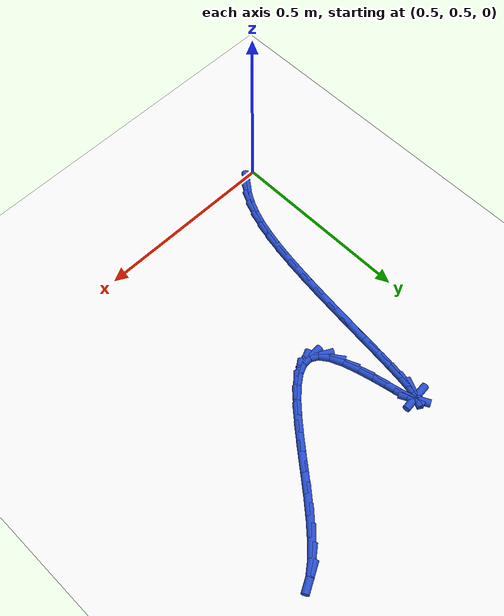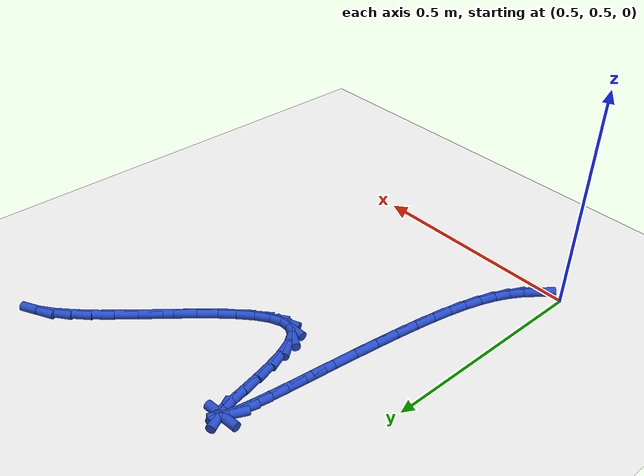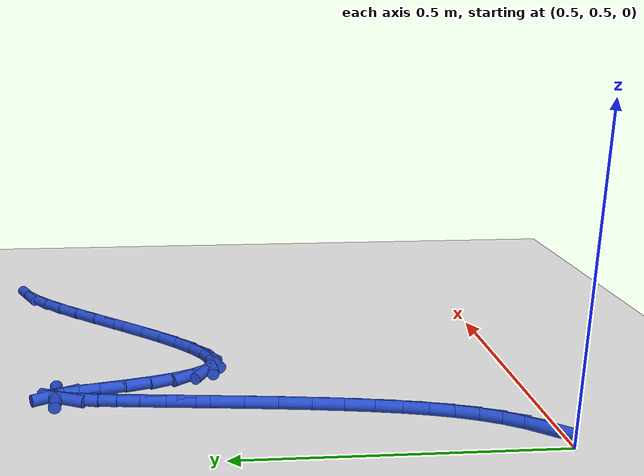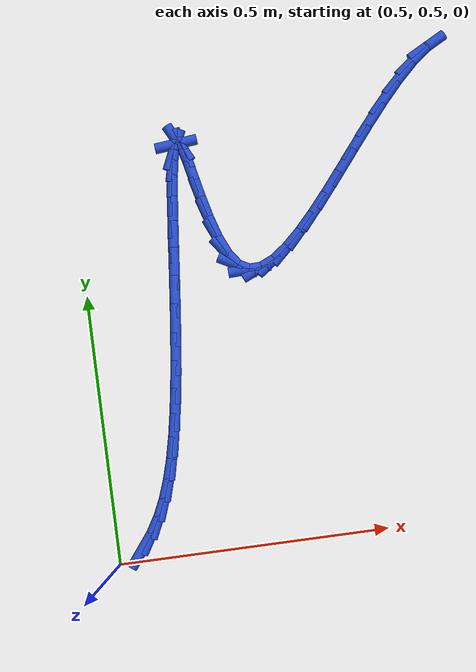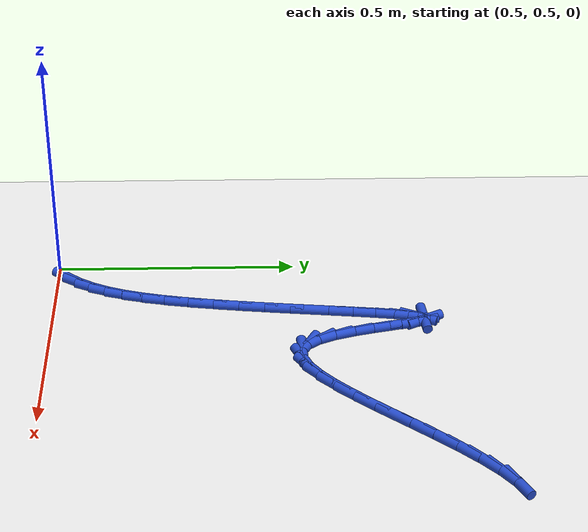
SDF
<sdf version="1.6">
 <world name="default">
  <model name="ground_plane">
   <static>1</static>
   <link name="link">
    <collision name="collision">
     <geometry><plane><normal>0 0 1</normal><size>100 100</size></plane></geometry>
     <surface><friction><ode><mu>100</mu><mu2>50</mu2></ode></friction></surface>
    </collision>
    <visual name="visual">
     <cast_shadows>0</cast_shadows>
     <geometry><plane><normal>0 0 1</normal><size>100 100</size></plane></geometry>
     <material>
      <script><uri>file://media/materials/scripts/gazebo.material</uri><name>Gazebo/WhiteGlow</name></script>
     </material>
    </visual>
   </link>
  </model>
  <model name="line">
   <link name="link_24">
    <pose>0.5455296327823708 0.5236204472520936 0.01 0 1.57 0.9145304912818619</pose>
    <collision name="collision">
     <geometry><cylinder><radius>0.01</radius><length>0.08</length></cylinder></geometry>
    </collision>
    <visual name="visual">
     <material>
      <script><name>Gazebo/Blue</name><uri>file://media/materials/scripts/gazebo.material</uri></script>
     </material>
     <geometry><cylinder><radius>0.01</radius><length>0.08</length></cylinder></geometry>
    </visual>
   </link>
   <link name="link_25">
    <pose>0.5647724157699903 0.5486065712041363 0.01 0 1.57 1.0345388438335907</pose>
    <collision name="collision">
     <geometry><cylinder><radius>0.01</radius><length>0.08</length></cylinder></geometry>
    </collision>
    <visual name="visual">
     <material>
      <script><name>Gazebo/Blue</name><uri>file://media/materials/scripts/gazebo.material</uri></script>
     </material>
     <geometry><cylinder><radius>0.01</radius><length>0.08</length></cylinder></geometry>
    </visual>
   </link>
   <link name="link_26">
    <pose>0.5814075393596708 0.5765951627173169 0.01 0 1.57 1.1398627381804094</pose>
    <collision name="collision">
     <geometry><cylinder><radius>0.01</radius><length>0.08</length></cylinder></geometry>
    </collision>
    <visual name="visual">
     <material>
      <script><name>Gazebo/Blue</name><uri>file://media/materials/scripts/gazebo.material</uri></script>
     </material>
     <geometry><cylinder><radius>0.01</radius><length>0.08</length></cylinder></geometry>
    </visual>
   </link>
   <link name="link_27">
    <pose>0.595756232202608 0.607804835888742 0.01 0 1.57 1.227549307937443</pose>
    <collision name="collision">
     <geometry><cylinder><radius>0.01</radius><length>0.08</length></cylinder></geometry>
    </collision>
    <visual name="visual">
     <material>
      <script><name>Gazebo/Blue</name><uri>file://media/materials/scripts/gazebo.material</uri></script>
     </material>
     <geometry><cylinder><radius>0.01</radius><length>0.08</length></cylinder></geometry>
    </visual>
   </link>
   <link name="link_28">
    <pose>0.6081397229499977 0.6424542048155183 0.01 0 1.57 1.297464077118905</pose>
    <collision name="collision">
     <geometry><cylinder><radius>0.01</radius><length>0.08</length></cylinder></geometry>
    </collision>
    <visual name="visual">
     <material>
      <script><name>Gazebo/Blue</name><uri>file://media/materials/scripts/gazebo.material</uri></script>
     </material>
     <geometry><cylinder><radius>0.01</radius><length>0.08</length></cylinder></geometry>
    </visual>
   </link>
   <link name="link_29">
    <pose>0.6188792402530364 0.6807618835947528 0.01 0 1.57 1.351169408942097</pose>
    <collision name="collision">
     <geometry><cylinder><radius>0.01</radius><length>0.08</length></cylinder></geometry>
    </collision>
    <visual name="visual">
     <material>
      <script><name>Gazebo/Blue</name><uri>file://media/materials/scripts/gazebo.material</uri></script>
     </material>
     <geometry><cylinder><radius>0.01</radius><length>0.08</length></cylinder></geometry>
    </visual>
   </link>
   <link name="link_30">
    <pose>0.6282960127629196 0.7229464863235519 0.01 0 1.57 1.3909107061222115</pose>
    <collision name="collision">
     <geometry><cylinder><radius>0.01</radius><length>0.08</length></cylinder></geometry>
    </collision>
    <visual name="visual">
     <material>
      <script><name>Gazebo/Blue</name><uri>file://media/materials/scripts/gazebo.material</uri></script>
     </material>
     <geometry><cylinder><radius>0.01</radius><length>0.08</length></cylinder></geometry>
    </visual>
   </link>
   <link name="link_31">
    <pose>0.6367041498422326 0.7691828018516689 0.01 0 1.57 1.4192503464533055</pose>
    <collision name="collision">
     <geometry><cylinder><radius>0.01</radius><length>0.08</length></cylinder></geometry>
    </collision>
    <visual name="visual">
     <material>
      <script><name>Gazebo/Blue</name><uri>file://media/materials/scripts/gazebo.material</uri></script>
     </material>
     <geometry><cylinder><radius>0.01</radius><length>0.08</length></cylinder></geometry>
    </visual>
   </link>
   <link name="link_32">
    <pose>0.6442994453411758 0.8189172869047909 0.01 0 1.57 1.4394356341061534</pose>
    <collision name="collision">
     <geometry><cylinder><radius>0.01</radius><length>0.08</length></cylinder></geometry>
    </collision>
    <visual name="visual">
     <material>
      <script><name>Gazebo/Blue</name><uri>file://media/materials/scripts/gazebo.material</uri></script>
     </material>
     <geometry><cylinder><radius>0.01</radius><length>0.08</length></cylinder></geometry>
    </visual>
   </link>
   <link name="link_33">
    <pose>0.6511801800050763 0.870996122510461 0.01 0 1.57 1.4537493055079098</pose>
    <collision name="collision">
     <geometry><cylinder><radius>0.01</radius><length>0.08</length></cylinder></geometry>
    </collision>
    <visual name="visual">
     <material>
      <script><name>Gazebo/Blue</name><uri>file://media/materials/scripts/gazebo.material</uri></script>
     </material>
     <geometry><cylinder><radius>0.01</radius><length>0.08</length></cylinder></geometry>
    </visual>
   </link>
   <link name="link_34">
    <pose>0.657441724599184 0.9242475763057676 0.01 0 1.57 1.4634644187524293</pose>
    <collision name="collision">
     <geometry><cylinder><radius>0.01</radius><length>0.08</length></cylinder></geometry>
    </collision>
    <visual name="visual">
     <material>
      <script><name>Gazebo/Blue</name><uri>file://media/materials/scripts/gazebo.material</uri></script>
     </material>
     <geometry><cylinder><radius>0.01</radius><length>0.08</length></cylinder></geometry>
    </visual>
   </link>
   <link name="link_35">
    <pose>0.6631794498887498 0.9774999159278012 0.01 0 1.57 1.4692055556160488</pose>
    <collision name="collision">
     <geometry><cylinder><radius>0.01</radius><length>0.08</length></cylinder></geometry>
    </collision>
    <visual name="visual">
     <material>
      <script><name>Gazebo/Blue</name><uri>file://media/materials/scripts/gazebo.material</uri></script>
     </material>
     <geometry><cylinder><radius>0.01</radius><length>0.08</length></cylinder></geometry>
    </visual>
   </link>
   <link name="link_36">
    <pose>0.6684887266390234 1.0295814090136501 0.01 0 1.57 1.4710817404510814</pose>
    <collision name="collision">
     <geometry><cylinder><radius>0.01</radius><length>0.08</length></cylinder></geometry>
    </collision>
    <visual name="visual">
     <material>
      <script><name>Gazebo/Blue</name><uri>file://media/materials/scripts/gazebo.material</uri></script>
     </material>
     <geometry><cylinder><radius>0.01</radius><length>0.08</length></cylinder></geometry>
    </visual>
   </link>
   <link name="link_37">
    <pose>0.6734649256152548 1.0793203232004043 0.01 0 1.57 1.4686429787536295</pose>
    <collision name="collision">
     <geometry><cylinder><radius>0.01</radius><length>0.08</length></cylinder></geometry>
    </collision>
    <visual name="visual">
     <material>
      <script><name>Gazebo/Blue</name><uri>file://media/materials/scripts/gazebo.material</uri></script>
     </material>
     <geometry><cylinder><radius>0.01</radius><length>0.08</length></cylinder></geometry>
    </visual>
   </link>
   <link name="link_38">
    <pose>0.678203417582695 1.1255449261251536 0.01 0 1.57 1.4605966585047636</pose>
    <collision name="collision">
     <geometry><cylinder><radius>0.01</radius><length>0.08</length></cylinder></geometry>
    </collision>
    <visual name="visual">
     <material>
      <script><name>Gazebo/Blue</name><uri>file://media/materials/scripts/gazebo.material</uri></script>
     </material>
     <geometry><cylinder><radius>0.01</radius><length>0.08</length></cylinder></geometry>
    </visual>
   </link>
   <link name="link_39">
    <pose>0.6827995733065937 1.1670834854249863 0.01 0 1.57 1.4439835792000386</pose>
    <collision name="collision">
     <geometry><cylinder><radius>0.01</radius><length>0.08</length></cylinder></geometry>
    </collision>
    <visual name="visual">
     <material>
      <script><name>Gazebo/Blue</name><uri>file://media/materials/scripts/gazebo.material</uri></script>
     </material>
     <geometry><cylinder><radius>0.01</radius><length>0.08</length></cylinder></geometry>
    </visual>
   </link>
   <link name="link_40">
    <pose>0.6873487635522011 1.2027642687369928 0.01 0 1.57 1.4116853669240994</pose>
    <collision name="collision">
     <geometry><cylinder><radius>0.01</radius><length>0.08</length></cylinder></geometry>
    </collision>
    <visual name="visual">
     <material>
      <script><name>Gazebo/Blue</name><uri>file://media/materials/scripts/gazebo.material</uri></script>
     </material>
     <geometry><cylinder><radius>0.01</radius><length>0.08</length></cylinder></geometry>
    </visual>
   </link>
   <link name="link_41">
    <pose>0.6919463590847681 1.2314155436982623 0.01 0 1.57 1.3429701531673195</pose>
    <collision name="collision">
     <geometry><cylinder><radius>0.01</radius><length>0.08</length></cylinder></geometry>
    </collision>
    <visual name="visual">
     <material>
      <script><name>Gazebo/Blue</name><uri>file://media/materials/scripts/gazebo.material</uri></script>
     </material>
     <geometry><cylinder><radius>0.01</radius><length>0.08</length></cylinder></geometry>
    </visual>
   </link>
   <link name="link_42">
    <pose>0.696687730669544 1.2518655779458836 0.01 0 1.57 1.1482546872405694</pose>
    <collision name="collision">
     <geometry><cylinder><radius>0.01</radius><length>0.08</length></cylinder></geometry>
    </collision>
    <visual name="visual">
     <material>
      <script><name>Gazebo/Blue</name><uri>file://media/materials/scripts/gazebo.material</uri></script>
     </material>
     <geometry><cylinder><radius>0.01</radius><length>0.08</length></cylinder></geometry>
    </visual>
   </link>
   <link name="link_43">
    <pose>0.7016682490717798 1.2629426391169467 0.01 0 1.57 0.09982738758546614</pose>
    <collision name="collision">
     <geometry><cylinder><radius>0.01</radius><length>0.08</length></cylinder></geometry>
    </collision>
    <visual name="visual">
     <material>
      <script><name>Gazebo/Blue</name><uri>file://media/materials/scripts/gazebo.material</uri></script>
     </material>
     <geometry><cylinder><radius>0.01</radius><length>0.08</length></cylinder></geometry>
    </visual>
   </link>
   <link name="link_44">
    <pose>0.7069832850567251 1.2634749948485404 0.01 0 1.57 -1.096272839131088</pose>
    <collision name="collision">
     <geometry><cylinder><radius>0.01</radius><length>0.08</length></cylinder></geometry>
    </collision>
    <visual name="visual">
     <material>
      <script><name>Gazebo/Blue</name><uri>file://media/materials/scripts/gazebo.material</uri></script>
     </material>
     <geometry><cylinder><radius>0.01</radius><length>0.08</length></cylinder></geometry>
    </visual>
   </link>
   <link name="link_45">
    <pose>0.7127282093896309 1.252290912777755 0.01 0 1.57 -1.3085836102659933</pose>
    <collision name="collision">
     <geometry><cylinder><radius>0.01</radius><length>0.08</length></cylinder></geometry>
    </collision>
    <visual name="visual">
     <material>
      <script><name>Gazebo/Blue</name><uri>file://media/materials/scripts/gazebo.material</uri></script>
     </material>
     <geometry><cylinder><radius>0.01</radius><length>0.08</length></cylinder></geometry>
    </visual>
   </link>
   <link name="link_46">
    <pose>0.7190306363501431 1.2288087628413726 0.01 0 1.57 -1.357377585973937</pose>
    <collision name="collision">
     <geometry><cylinder><radius>0.01</radius><length>0.08</length></cylinder></geometry>
    </collision>
    <visual name="visual">
     <material>
      <script><name>Gazebo/Blue</name><uri>file://media/materials/scripts/gazebo.material</uri></script>
     </material>
     <geometry><cylinder><radius>0.01</radius><length>0.08</length></cylinder></geometry>
    </visual>
   </link>
   <link name="link_47">
    <pose>0.72619794569816 1.19573687964935 0.01 0 1.57 -1.3576183703244797</pose>
    <collision name="collision">
     <geometry><cylinder><radius>0.01</radius><length>0.08</length></cylinder></geometry>
    </collision>
    <visual name="visual">
     <material>
      <script><name>Gazebo/Blue</name><uri>file://media/materials/scripts/gazebo.material</uri></script>
     </material>
     <geometry><cylinder><radius>0.01</radius><length>0.08</length></cylinder></geometry>
    </visual>
   </link>
   <link name="link_48">
    <pose>0.7345997942027793 1.156923355900513 0.01 0 1.57 -1.3297610556954285</pose>
    <collision name="collision">
     <geometry><cylinder><radius>0.01</radius><length>0.08</length></cylinder></geometry>
    </collision>
    <visual name="visual">
     <material>
      <script><name>Gazebo/Blue</name><uri>file://media/materials/scripts/gazebo.material</uri></script>
     </material>
     <geometry><cylinder><radius>0.01</radius><length>0.08</length></cylinder></geometry>
    </visual>
   </link>
   <link name="link_49">
    <pose>0.7446058993520535 1.1162173955371593 0.01 0 1.57 -1.2709482701935573</pose>
    <collision name="collision">
     <geometry><cylinder><radius>0.01</radius><length>0.08</length></cylinder></geometry>
    </collision>
    <visual name="visual">
     <material>
      <script><name>Gazebo/Blue</name><uri>file://media/materials/scripts/gazebo.material</uri></script>
     </material>
     <geometry><cylinder><radius>0.01</radius><length>0.08</length></cylinder></geometry>
    </visual>
   </link>
   <link name="link_50">
    <pose>0.7565859786340348 1.0774682025015858 0.01 0 1.57 -1.1606528772561064</pose>
    <collision name="collision">
     <geometry><cylinder><radius>0.01</radius><length>0.08</length></cylinder></geometry>
    </collision>
    <visual name="visual">
     <material>
      <script><name>Gazebo/Blue</name><uri>file://media/materials/scripts/gazebo.material</uri></script>
     </material>
     <geometry><cylinder><radius>0.01</radius><length>0.08</length></cylinder></geometry>
    </visual>
   </link>
   <link name="link_51">
    <pose>0.7709097495367757 1.0445249807360906 0.01 0 1.57 -0.9391876550288493</pose>
    <collision name="collision">
     <geometry><cylinder><radius>0.01</radius><length>0.08</length></cylinder></geometry>
    </collision>
    <visual name="visual">
     <material>
      <script><name>Gazebo/Blue</name><uri>file://media/materials/scripts/gazebo.material</uri></script>
     </material>
     <geometry><cylinder><radius>0.01</radius><length>0.08</length></cylinder></geometry>
    </visual>
   </link>
   <link name="link_52">
    <pose>0.7879469180049615 1.0212368454535667 0.01 0 1.57 -0.4957348741669882</pose>
    <collision name="collision">
     <geometry><cylinder><radius>0.01</radius><length>0.08</length></cylinder></geometry>
    </collision>
    <visual name="visual">
     <material>
      <script><name>Gazebo/Blue</name><uri>file://media/materials/scripts/gazebo.material</uri></script>
     </material>
     <geometry><cylinder><radius>0.01</radius><length>0.08</length></cylinder></geometry>
    </visual>
   </link>
   <link name="link_53">
    <pose>0.8079338971057203 1.0104283410003894 0.01 0 1.57 0.04082333624782419</pose>
    <collision name="collision">
     <geometry><cylinder><radius>0.01</radius><length>0.08</length></cylinder></geometry>
    </collision>
    <visual name="visual">
     <material>
      <script><name>Gazebo/Blue</name><uri>file://media/materials/scripts/gazebo.material</uri></script>
     </material>
     <geometry><cylinder><radius>0.01</radius><length>0.08</length></cylinder></geometry>
    </visual>
   </link>
   <link name="link_54">
    <pose>0.8306429035655808 1.0113559137447183 0.01 0 1.57 0.4178014793891592</pose>
    <collision name="collision">
     <geometry><cylinder><radius>0.01</radius><length>0.08</length></cylinder></geometry>
    </collision>
    <visual name="visual">
     <material>
      <script><name>Gazebo/Blue</name><uri>file://media/materials/scripts/gazebo.material</uri></script>
     </material>
     <geometry><cylinder><radius>0.01</radius><length>0.08</length></cylinder></geometry>
    </visual>
   </link>
   <link name="link_55">
    <pose>0.855745167736445 1.0224997667981106 0.01 0 1.57 0.6307844151344876</pose>
    <collision name="collision">
     <geometry><cylinder><radius>0.01</radius><length>0.08</length></cylinder></geometry>
    </collision>
    <visual name="visual">
     <material>
      <script><name>Gazebo/Blue</name><uri>file://media/materials/scripts/gazebo.material</uri></script>
     </material>
     <geometry><cylinder><radius>0.01</radius><length>0.08</length></cylinder></geometry>
    </visual>
   </link>
   <link name="link_56">
    <pose>0.8829119199702158 1.0423401032721245 0.01 0 1.57 0.751693751628106</pose>
    <collision name="collision">
     <geometry><cylinder><radius>0.01</radius><length>0.08</length></cylinder></geometry>
    </collision>
    <visual name="visual">
     <material>
      <script><name>Gazebo/Blue</name><uri>file://media/materials/scripts/gazebo.material</uri></script>
     </material>
     <geometry><cylinder><radius>0.01</radius><length>0.08</length></cylinder></geometry>
    </visual>
   </link>
   <link name="link_57">
    <pose>0.9118143906187954 1.0693571262783177 0.01 0 1.57 0.8229221126805729</pose>
    <collision name="collision">
     <geometry><cylinder><radius>0.01</radius><length>0.08</length></cylinder></geometry>
    </collision>
    <visual name="visual">
     <material>
      <script><name>Gazebo/Blue</name><uri>file://media/materials/scripts/gazebo.material</uri></script>
     </material>
     <geometry><cylinder><radius>0.01</radius><length>0.08</length></cylinder></geometry>
    </visual>
   </link>
   <link name="link_58">
    <pose>0.9421238100340865 1.1020310389282482 0.01 0 1.57 0.8647548827633805</pose>
    <collision name="collision">
     <geometry><cylinder><radius>0.01</radius><length>0.08</length></cylinder></geometry>
    </collision>
    <visual name="visual">
     <material>
      <script><name>Gazebo/Blue</name><uri>file://media/materials/scripts/gazebo.material</uri></script>
     </material>
     <geometry><cylinder><radius>0.01</radius><length>0.08</length></cylinder></geometry>
    </visual>
   </link>
   <link name="link_59">
    <pose>0.9735114085679918 1.138842044333473 0.01 0 1.57 0.8869308898965139</pose>
    <collision name="collision">
     <geometry><cylinder><radius>0.01</radius><length>0.08</length></cylinder></geometry>
    </collision>
    <visual name="visual">
     <material>
      <script><name>Gazebo/Blue</name><uri>file://media/materials/scripts/gazebo.material</uri></script>
     </material>
     <geometry><cylinder><radius>0.01</radius><length>0.08</length></cylinder></geometry>
    </visual>
   </link>
   <link name="link_60">
    <pose>1.0056484165724136 1.1782703456055506 0.01 0 1.57 0.8939973481487795</pose>
    <collision name="collision">
     <geometry><cylinder><radius>0.01</radius><length>0.08</length></cylinder></geometry>
    </collision>
    <visual name="visual">
     <material>
      <script><name>Gazebo/Blue</name><uri>file://media/materials/scripts/gazebo.material</uri></script>
     </material>
     <geometry><cylinder><radius>0.01</radius><length>0.08</length></cylinder></geometry>
    </visual>
   </link>
   <link name="link_61">
    <pose>1.0382060643992546 1.218796145856039 0.01 0 1.57 0.8874979151706106</pose>
    <collision name="collision">
     <geometry><cylinder><radius>0.01</radius><length>0.08</length></cylinder></geometry>
    </collision>
    <visual name="visual">
     <material>
      <script><name>Gazebo/Blue</name><uri>file://media/materials/scripts/gazebo.material</uri></script>
     </material>
     <geometry><cylinder><radius>0.01</radius><length>0.08</length></cylinder></geometry>
    </visual>
   </link>
   <link name="link_62">
    <pose>1.0708555824004167 1.2588996481964951 0.01 0 1.57 0.8666762860536887</pose>
    <collision name="collision">
     <geometry><cylinder><radius>0.01</radius><length>0.08</length></cylinder></geometry>
    </collision>
    <visual name="visual">
     <material>
      <script><name>Gazebo/Blue</name><uri>file://media/materials/scripts/gazebo.material</uri></script>
     </material>
     <geometry><cylinder><radius>0.01</radius><length>0.08</length></cylinder></geometry>
    </visual>
   </link>
   <link name="link_63">
    <pose>1.1032682009278036 1.2970610557384776 0.01 0 1.57 0.8282377220193725</pose>
    <collision name="collision">
     <geometry><cylinder><radius>0.01</radius><length>0.08</length></cylinder></geometry>
    </collision>
    <visual name="visual">
     <material>
      <script><name>Gazebo/Blue</name><uri>file://media/materials/scripts/gazebo.material</uri></script>
     </material>
     <geometry><cylinder><radius>0.01</radius><length>0.08</length></cylinder></geometry>
    </visual>
   </link>
   <link name="link_64">
    <pose>1.1351151503333172 1.3317605715935439 0.01 0 1.57 0.7650502801931045</pose>
    <collision name="collision">
     <geometry><cylinder><radius>0.01</radius><length>0.08</length></cylinder></geometry>
    </collision>
    <visual name="visual">
     <material>
      <script><name>Gazebo/Blue</name><uri>file://media/materials/scripts/gazebo.material</uri></script>
     </material>
     <geometry><cylinder><radius>0.01</radius><length>0.08</length></cylinder></geometry>
    </visual>
   </link>
   <link name="link_65">
    <pose>1.16606766096886 1.3614783988732517 0.01 0 1.57 0.6630008591409428</pose>
    <collision name="collision">
     <geometry><cylinder><radius>0.01</radius><length>0.08</length></cylinder></geometry>
    </collision>
    <visual name="visual">
     <material>
      <script><name>Gazebo/Blue</name><uri>file://media/materials/scripts/gazebo.material</uri></script>
     </material>
     <geometry><cylinder><radius>0.01</radius><length>0.08</length></cylinder></geometry>
    </visual>
   </link>
   <link name="link_66">
    <pose>1.1957969631863339 1.3846947406891583 0.01 0 1.57 0.49456443265897987</pose>
    <collision name="collision">
     <geometry><cylinder><radius>0.01</radius><length>0.08</length></cylinder></geometry>
    </collision>
    <visual name="visual">
     <material>
      <script><name>Gazebo/Blue</name><uri>file://media/materials/scripts/gazebo.material</uri></script>
     </material>
     <geometry><cylinder><radius>0.01</radius><length>0.08</length></cylinder></geometry>
    </visual>
   </link>
  </model>
 </world>
</sdf>
